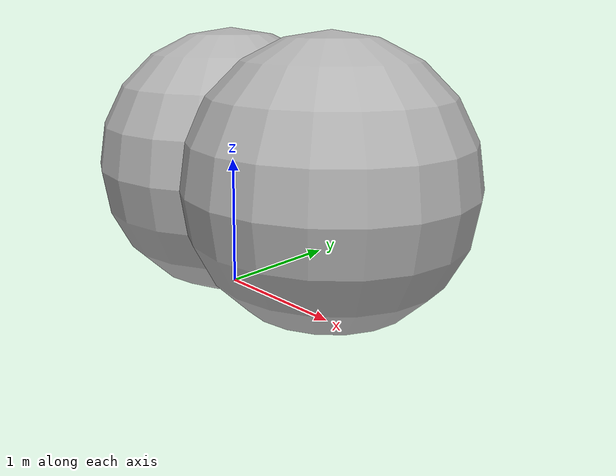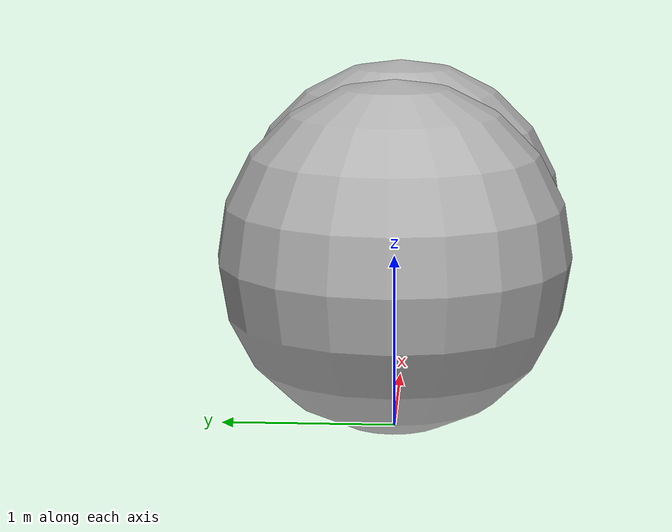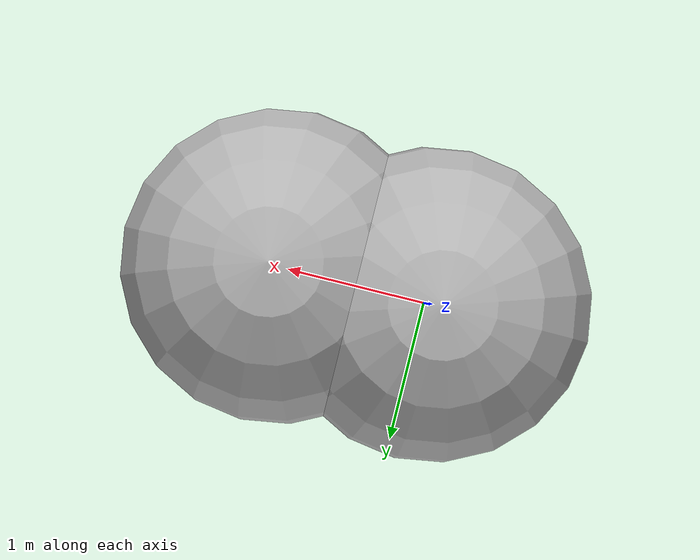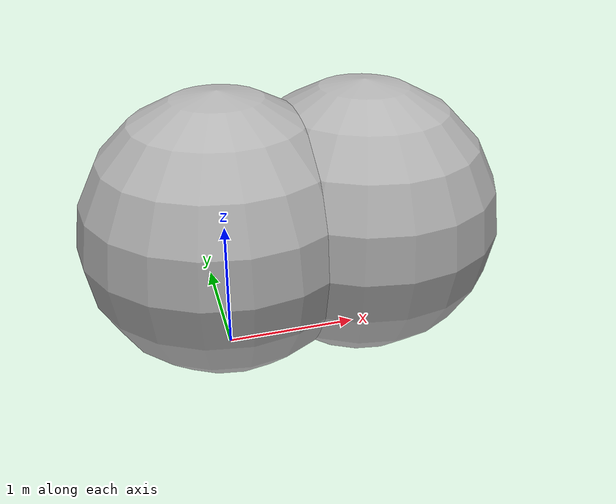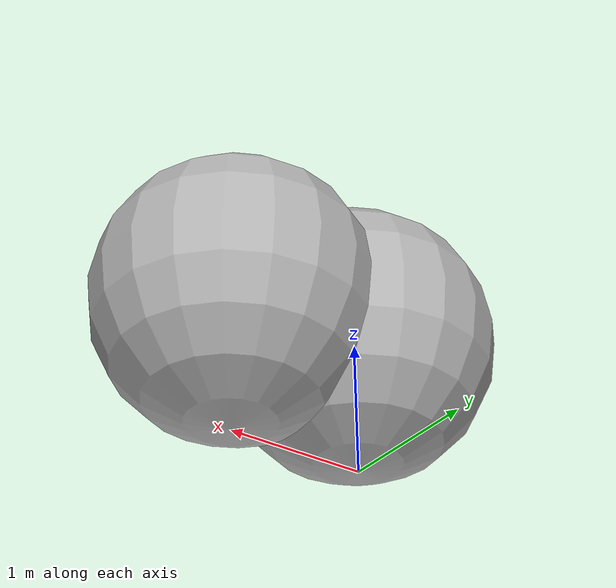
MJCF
<mujoco>
  <option gravity="0 0 -9.81" />
  <worldbody>
    <body name="object" pos="0.0 0.0 1.0"><geom type="sphere" size="1.0" rgba="0.7 0.7 0.7 1" /></body><body name="fragment1" pos="1.0 0.0 1.0"><geom type="sphere" size="1.0" rgba="0.7 0.7 0.7 1" /></body><body name="fragment2" pos="1.0 0.0 1.0"><geom type="sphere" size="1.0" rgba="0.7 0.7 0.7 1" /></body></worldbody>
</mujoco>
